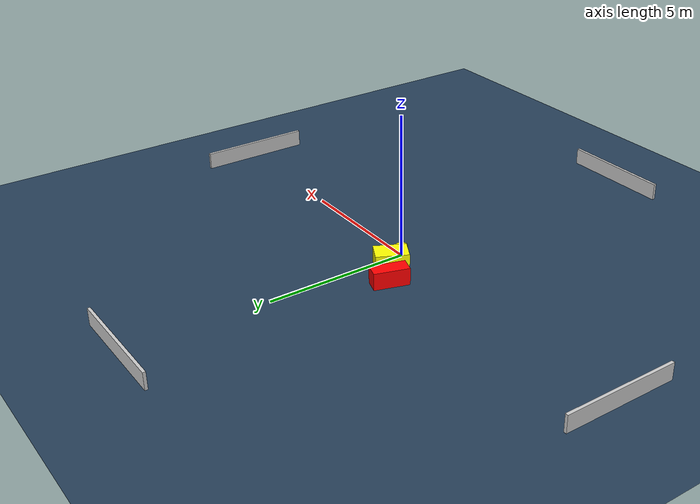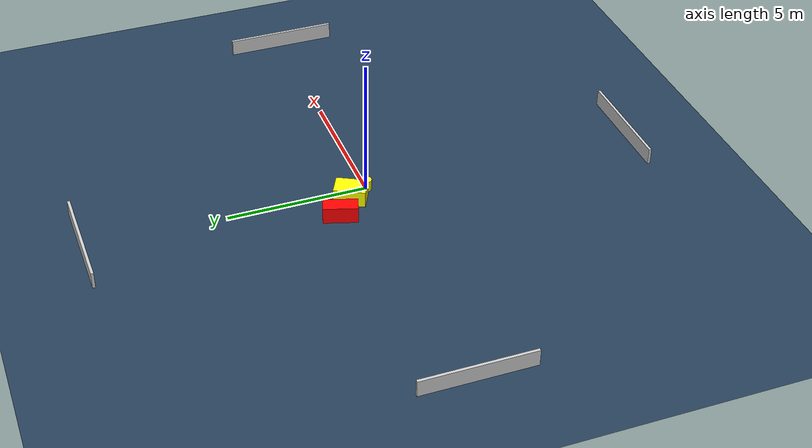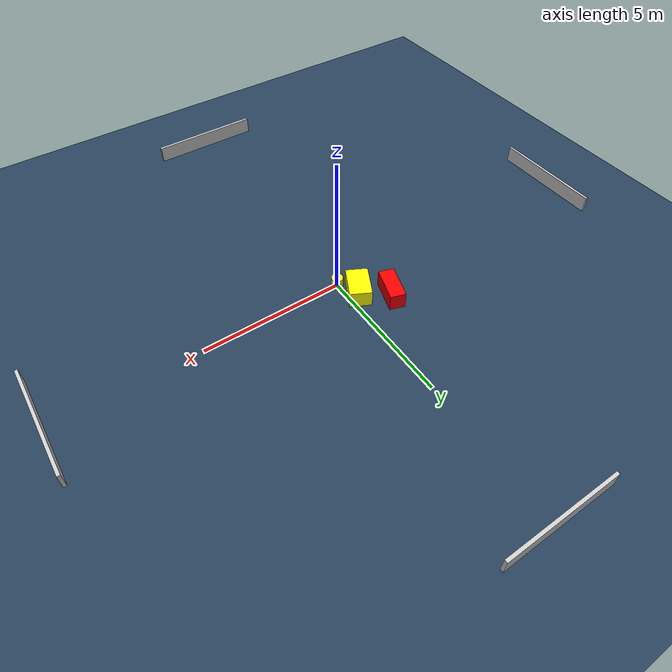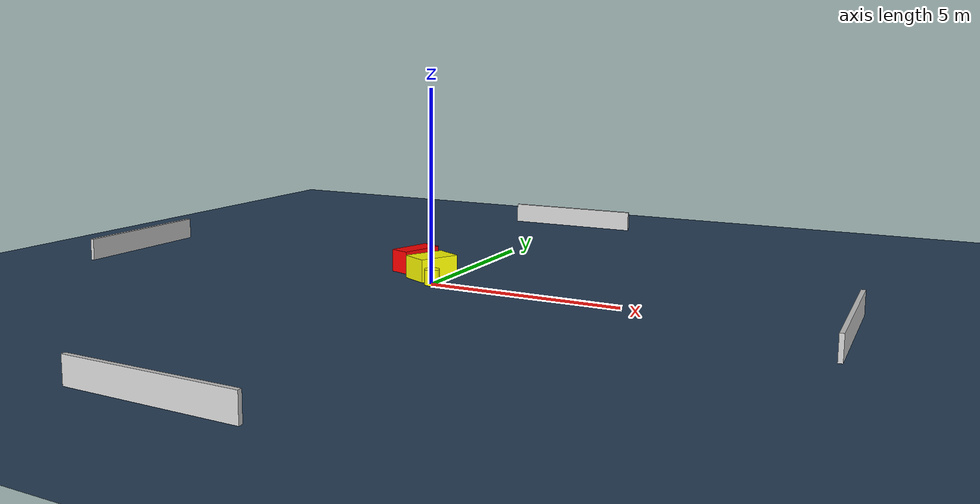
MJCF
<?xml version="1.0" ?>
<mujoco model="generated_environment">
  <option timestep="0.01" integrator="RK4" cone="elliptic"/>
  <default>
    <geom density="1"/>
  </default>
  <asset>
    <texture builtin="gradient" height="3072" name="skybox" rgb1="0.3 0.5 0.7" rgb2="0 0 0" type="skybox" width="512"/>
    <texture builtin="checker" height="300" name="groundplane" rgb1="0.2 0.3 0.4" rgb2="0.1 0.2 0.3" type="2d" width="300"/>
    <material name="groundplane" reflectance="0.2" texrepeat="5 5" texture="groundplane"/>
  </asset>
  <worldbody>
    <light dir="0 0 -1" directional="true" pos="0 0 1.5"/>
    <geom condim="3" friction="0.5 0.005 0.001" material="groundplane" name="floor" pos="0 0 0" size="0 0 0.05" type="plane"/>
    <body name="walls">
      <geom name="wall_1" condim="4" pos="-10.0 0.0 0.3" rgba="0.800000011920929 0.800000011920929 0.800000011920929 1.0" size="0.05 2.0 0.3" type="box"/>
      <geom name="wall_2" condim="4" pos="10.0 0.0 0.3" rgba="0.800000011920929 0.800000011920929 0.800000011920929 1.0" size="0.05 2.0 0.3" type="box"/>
      <geom name="wall_3" condim="4" pos="0.0 -10.0 0.3" rgba="0.800000011920929 0.800000011920929 0.800000011920929 1.0" size="2.0 0.05 0.3" type="box"/>
      <geom name="wall_4" condim="4" pos="0.0 10.0 0.3" rgba="0.800000011920929 0.800000011920929 0.800000011920929 1.0" size="2.0 0.05 0.3" type="box"/>
    </body>
    <body name="robot">
      <joint name="joint_x" type="slide" pos="0 0 0" axis="1 0 0"/>
      <joint name="joint_y" type="slide" pos="0 0 0" axis="0 1 0"/>
      <geom name="robot" type="cylinder" pos="0.0 0.0 0.2" size="0.2 0.2 0.0" mass="5.0" friction="1.0 0.005 0.0001" condim="4" rgba="1.0 1.0 0.0 1.0"/>
    </body>
    <body name="obstacle_1_movable">
      <geom name="obstacle_1_movable" condim="4" pos="-0.38688760894041885 0.6948977124761216 0.3" euler="0 0 332.65538069241836" friction="0.0 0.005 0.001" rgba="1.0 1.0 0.0 1.0" size="0.37937098076586195 0.5615544139955146 0.3" type="box" mass="0.1"/>
      <joint type="free"/>
    </body>
    <body name="obstacle_2_static">
      <geom name="obstacle_2_static" condim="4" pos="-1.2578646622205896 1.370459740971677 0.3" euler="0 0 252.55708945510165" friction="0.0 0.005 0.001" rgba="1.0 0.0 0.0 1.0" size="0.6075521736206689 0.2700953651125182 0.3" type="box"/>
    </body>
  </worldbody>
  <actuator>
    <motor name="actuator_x" joint="joint_x" gear="1" ctrlrange="-1 1"/>
    <motor name="actuator_y" joint="joint_y" gear="1" ctrlrange="-1 1"/>
  </actuator>
</mujoco>
